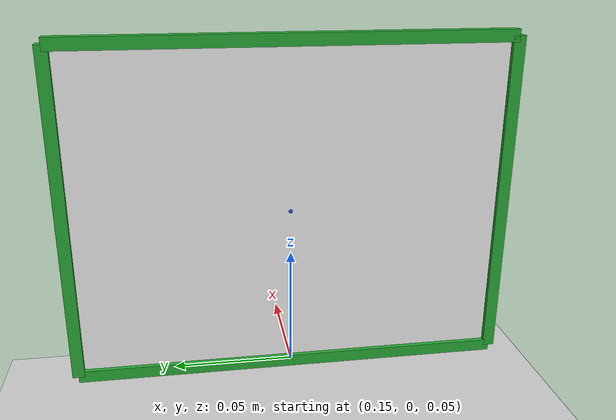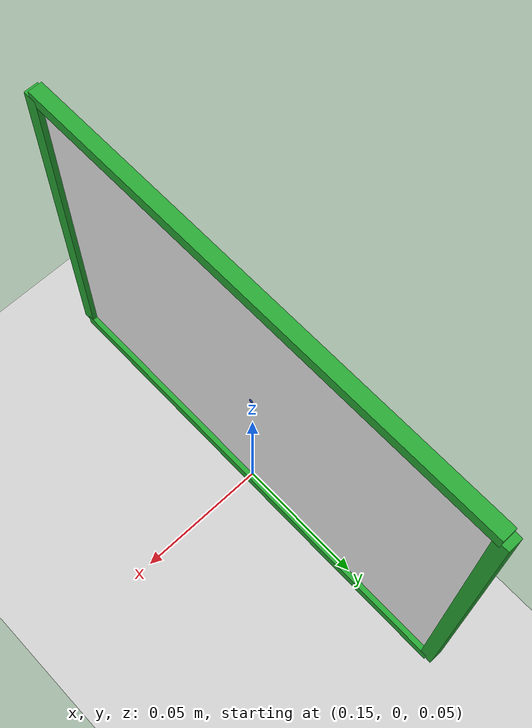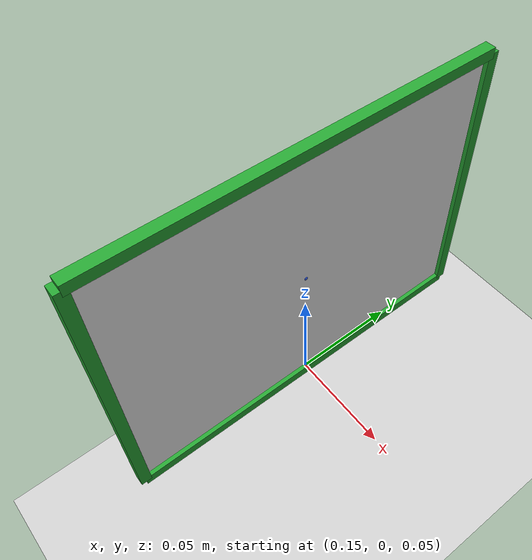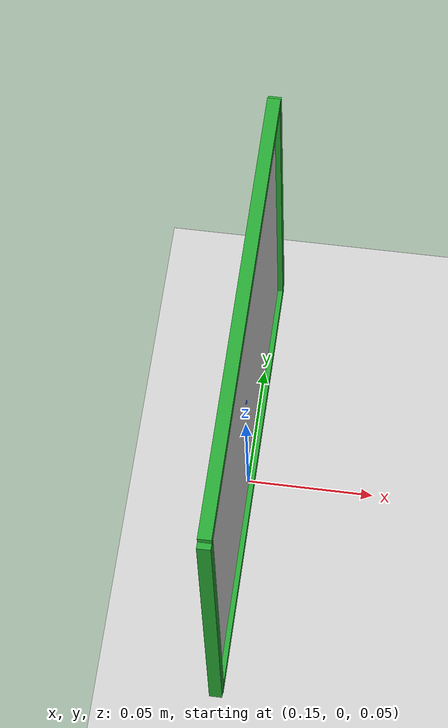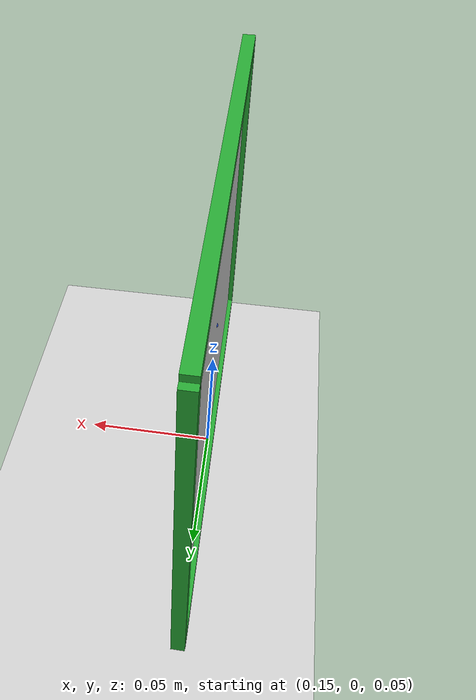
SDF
<?xml version="1.0"?>
<sdf version="1.6">
  <world name="rl_training_world">

    <!-- Physics settings optimized for RL training -->
    <physics name="default_physics" default="0" type="ode">
  <max_step_size>0.001</max_step_size>
      <real_time_factor>1.0</real_time_factor>
      <real_time_update_rate>1000</real_time_update_rate>
      <gravity>0 0 -9.8</gravity>

      <ode>
        <solver>
          <type>quick</type>
          <iters>50</iters>
          <sor>1.3</sor>
          <use_dynamic_moi_rescaling>0</use_dynamic_moi_rescaling>
        </solver>
        <constraints>
          <cfm>0.0</cfm>
          <erp>0.2</erp>
          <contact_max_correcting_vel>100.0</contact_max_correcting_vel>
          <contact_surface_layer>0.001</contact_surface_layer>
        </constraints>
      </ode>
    </physics>

    <!-- Scene settings -->
    <scene>
      <ambient>0.8 0.8 0.8 1.0</ambient>
      <background>0.7 0.7 0.7 1.0</background>
      <shadows>1</shadows>
    </scene>

    <!-- Sun light -->
    <light type="directional" name="sun">
      <cast_shadows>1</cast_shadows>
      <pose>0 0 10 0 0 0</pose>
      <diffuse>0.8 0.8 0.8 1</diffuse>
      <specular>0.2 0.2 0.2 1</specular>
      <attenuation>
        <range>1000</range>
        <constant>0.9</constant>
        <linear>0.01</linear>
        <quadratic>0.001</quadratic>
      </attenuation>
      <direction>-0.5 0.1 -0.9</direction>
    </light>

    <!-- Ground plane -->
    <model name="ground_plane">
      <static>true</static>
      <link name="link">
        <collision name="collision">
          <geometry>
            <plane>
              <normal>0 0 1</normal>
              <size>20 20</size>
            </plane>
          </geometry>
          <surface>
            <friction>
              <ode>
                <mu>1.0</mu>
                <mu2>1.0</mu2>
              </ode>
            </friction>
          </surface>
        </collision>
        <visual name="visual">
          <geometry>
            <plane>
              <normal>0 0 1</normal>
              <size>20 20</size>
            </plane>
          </geometry>
          <material>
            <script>
              <uri>file://media/materials/scripts/gazebo.material</uri>
              <name>Gazebo/Grey</name>
            </script>
            <ambient>0.5 0.5 0.5 1</ambient>
            <diffuse>0.5 0.5 0.5 1</diffuse>
          </material>
        </visual>
      </link>
    </model>

    <!-- Workspace visualization removed for better robot visibility -->

    <!-- Additional lighting for better visualization -->
    <light name='user_directional_light_0' type='directional'>
      <pose frame=''>2 2 4 0 0 0</pose>
      <diffuse>0.5 0.5 0.5 1</diffuse>
      <specular>0.1 0.1 0.1 1</specular>
      <direction>-0.5 -0.5 -1</direction>
      <attenuation>
        <range>20</range>
        <constant>0.5</constant>
        <linear>0.01</linear>
        <quadratic>0.001</quadratic>
      </attenuation>
      <cast_shadows>0</cast_shadows>
    </light>

    <!-- WORKSPACE FRAME - Validated Conservative Zone (95% IK Success)  -->
    <!-- Frame shows the validated workspace boundaries from analysis:   -->
    <!-- X = 0.15m (FIXED at drawing surface)                            -->
    <!-- Y ∈ [-0.09, +0.09] m (±9cm)                                     -->
    <!-- Z ∈ [0.05, 0.187] m (5cm to 18.7cm)                             -->
    <!-- Total area: 18cm × 13.7cm rectangle                             -->

    <model name='workspace_frame'>
      <static>1</static>
      <pose frame=''>0.15 0 0.1185 0 0 0</pose>  <!-- Center of workspace: X=15cm, Y=0, Z=11.85cm -->

      <!-- Top Border (Z = 18.7cm) -->
      <link name='top_border'>
        <pose frame=''>0 0 0.0685 0 0 0</pose>  <!-- Offset from center: +6.85cm -->
        <visual name='top_border_visual'>
          <geometry>
            <box>
              <size>0.005 0.18 0.005</size>  <!-- 5mm thick, 18cm wide, 5mm tall -->
            </box>
          </geometry>
          <material>
            <script>
              <uri>file://media/materials/scripts/gazebo.material</uri>
              <name>Gazebo/Green</name>
            </script>
            <ambient>0.0 0.8 0.0 1</ambient>
            <diffuse>0.0 0.8 0.0 1</diffuse>
          </material>
        </visual>
      </link>

      <!-- Bottom Border (Z = 5cm) -->
      <link name='bottom_border'>
        <pose frame=''>0 0 -0.0685 0 0 0</pose>  <!-- Offset from center: -6.85cm -->
        <visual name='bottom_border_visual'>
          <geometry>
            <box>
              <size>0.005 0.18 0.005</size>  <!-- 5mm thick, 18cm wide, 5mm tall -->
            </box>
          </geometry>
          <material>
            <script>
              <uri>file://media/materials/scripts/gazebo.material</uri>
              <name>Gazebo/Green</name>
            </script>
            <ambient>0.0 0.8 0.0 1</ambient>
            <diffuse>0.0 0.8 0.0 1</diffuse>
          </material>
        </visual>
      </link>

      <!-- Left Border (Y = -9cm) -->
      <link name='left_border'>
        <pose frame=''>0 -0.09 0 0 0 0</pose>  <!-- Offset from center: -9cm -->
        <visual name='left_border_visual'>
          <geometry>
            <box>
              <size>0.005 0.005 0.137</size>  <!-- 5mm thick, 5mm wide, 13.7cm tall -->
            </box>
          </geometry>
          <material>
            <script>
              <uri>file://media/materials/scripts/gazebo.material</uri>
              <name>Gazebo/Green</name>
            </script>
            <ambient>0.0 0.8 0.0 1</ambient>
            <diffuse>0.0 0.8 0.0 1</diffuse>
          </material>
        </visual>
      </link>

      <!-- Right Border (Y = +9cm) -->
      <link name='right_border'>
        <pose frame=''>0 0.09 0 0 0 0</pose>  <!-- Offset from center: +9cm -->
        <visual name='right_border_visual'>
          <geometry>
            <box>
              <size>0.005 0.005 0.137</size>  <!-- 5mm thick, 5mm wide, 13.7cm tall -->
            </box>
          </geometry>
          <material>
            <script>
              <uri>file://media/materials/scripts/gazebo.material</uri>
              <name>Gazebo/Green</name>
            </script>
            <ambient>0.0 0.8 0.0 1</ambient>
            <diffuse>0.0 0.8 0.0 1</diffuse>
          </material>
        </visual>
      </link>

      <!-- Optional: Transparent background panel to show workspace area -->
      <link name='workspace_background'>
        <pose frame=''>0 0 0 0 0 0</pose>
        <visual name='workspace_background_visual'>
          <geometry>
            <box>
              <size>0.001 0.18 0.137</size>  <!-- Very thin panel, 18cm × 13.7cm -->
            </box>
          </geometry>
          <material>
            <script>
              <uri>file://media/materials/scripts/gazebo.material</uri>
              <name>Gazebo/White</name>
            </script>
            <ambient>0.9 0.9 0.9 0.3</ambient>  <!-- Semi-transparent white -->
            <diffuse>0.9 0.9 0.9 0.3</diffuse>
          </material>
        </visual>
      </link>
    </model>

    <!-- WORKSPACE CENTER MARKER (Optional reference point)              -->
    <model name='workspace_center_marker'>
      <static>1</static>
      <pose frame=''>0.15 0 0.1185 0 0 0</pose>  <!-- Center of workspace -->
      <link name='center_marker_link'>
        <visual name='center_marker_visual'>
          <geometry>
            <sphere>
              <radius>0.001</radius>  <!-- 1mm radius - very small point -->
            </sphere>
          </geometry>
          <material>
            <script>
              <uri>file://media/materials/scripts/gazebo.material</uri>
              <name>Gazebo/Blue</name>
            </script>
            <ambient>0.0 0.0 1.0 1</ambient>
            <diffuse>0.0 0.0 1.0 1</diffuse>
          </material>
        </visual>
      </link>
    </model>

    <!-- GUI settings -->
    <gui fullscreen='0'>
      <camera name='user_camera'>
        <pose frame=''>0.6 0.6 0.5 0 0.4 -2.3</pose>  <!-- Better view of workspace frame -->
        <view_controller>orbit</view_controller>
        <projection_type>perspective</projection_type>
      </camera>
    </gui>

  </world>
</sdf>
